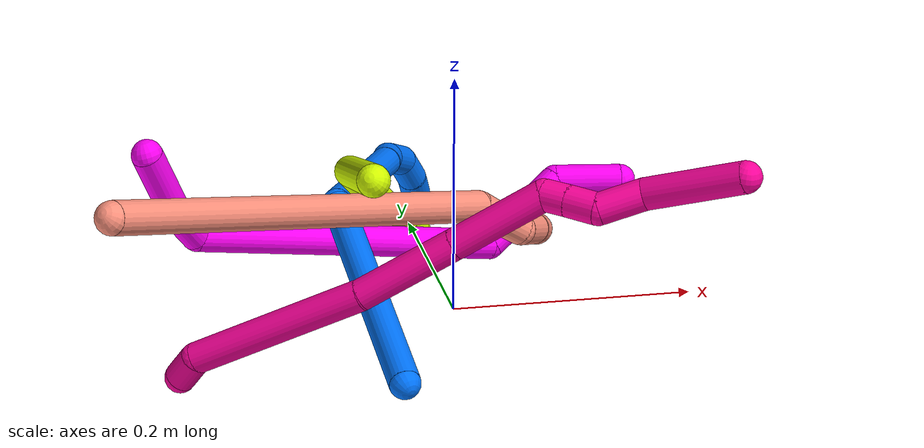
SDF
<sdf version="1.7">
 <world name="default">
  <model name="10">
   <static>0</static>
   <link name="10">
    <collision name="collision-cylinder-e_1_1_4">
     <pose>0.003329 0.014089 -0.028062 -2.6763 0.105633 -0.439052</pose>
     <geometry><cylinder><radius>0.0125</radius><length>0.063152</length></cylinder></geometry>
     <surface>
      <friction><ode><mu>1.16</mu><mu2>1.16</mu2><slip1>0</slip1><slip2>0</slip2></ode></friction>
      <contact><ode><kp>1e+06</kp><kd>1</kd><max_vel>0</max_vel><min_depth>0.001</min_depth></ode></contact>
     </surface>
    </collision>
    <visual name="visual-cylinder-e_1_1_4">
     <pose>0.003329 0.014089 -0.028062 -2.6763 0.105633 -0.439052</pose>
     <geometry><cylinder><radius>0.0125</radius><length>0.063152</length></cylinder></geometry>
     <material><ambient>1 0 0.964706 1</ambient></material>
    </visual>
    <collision name="collision-cylinder-e_2_4_5">
     <pose>0.011706 0.037508 -0.069804 -2.54304 0.295856 -0.899864</pose>
     <geometry><cylinder><radius>0.0125</radius><length>0.034623</length></cylinder></geometry>
     <surface>
      <friction><ode><mu>1.16</mu><mu2>1.16</mu2><slip1>0</slip1><slip2>0</slip2></ode></friction>
      <contact><ode><kp>1e+06</kp><kd>1</kd><max_vel>0</max_vel><min_depth>0.001</min_depth></ode></contact>
     </surface>
    </collision>
    <visual name="visual-cylinder-e_2_4_5">
     <pose>0.011706 0.037508 -0.069804 -2.54304 0.295856 -0.899864</pose>
     <geometry><cylinder><radius>0.0125</radius><length>0.034623</length></cylinder></geometry>
     <material><ambient>1 0 0.964706 1</ambient></material>
    </visual>
    <collision name="collision-cylinder-e_3_5_6">
     <pose>0.128118 0.101478 -0.133516 -2.31219 0.98378 -1.76604</pose>
     <geometry><cylinder><radius>0.0125</radius><length>0.267513</length></cylinder></geometry>
     <surface>
      <friction><ode><mu>1.16</mu><mu2>1.16</mu2><slip1>0</slip1><slip2>0</slip2></ode></friction>
      <contact><ode><kp>1e+06</kp><kd>1</kd><max_vel>0</max_vel><min_depth>0.001</min_depth></ode></contact>
     </surface>
    </collision>
    <visual name="visual-cylinder-e_3_5_6">
     <pose>0.128118 0.101478 -0.133516 -2.31219 0.98378 -1.76604</pose>
     <geometry><cylinder><radius>0.0125</radius><length>0.267513</length></cylinder></geometry>
     <material><ambient>1 0 0.964706 1</ambient></material>
    </visual>
    <collision name="collision-cylinder-e_4_6_7">
     <pose>0.273289 0.172734 -0.169165 -0.85737 0.994377 -0.486211</pose>
     <geometry><cylinder><radius>0.0125</radius><length>0.080641</length></cylinder></geometry>
     <surface>
      <friction><ode><mu>1.16</mu><mu2>1.16</mu2><slip1>0</slip1><slip2>0</slip2></ode></friction>
      <contact><ode><kp>1e+06</kp><kd>1</kd><max_vel>0</max_vel><min_depth>0.001</min_depth></ode></contact>
     </surface>
    </collision>
    <visual name="visual-cylinder-e_4_6_7">
     <pose>0.273289 0.172734 -0.169165 -0.85737 0.994377 -0.486211</pose>
     <geometry><cylinder><radius>0.0125</radius><length>0.080641</length></cylinder></geometry>
     <material><ambient>1 0 0.964706 1</ambient></material>
    </visual>
    <collision name="collision-cylinder-e_5_7_2">
     <pose>0.33318 0.189221 -0.161888 3.12342 1.30486 3.1178</pose>
     <geometry><cylinder><radius>0.0125</radius><length>0.054071</length></cylinder></geometry>
     <surface>
      <friction><ode><mu>1.16</mu><mu2>1.16</mu2><slip1>0</slip1><slip2>0</slip2></ode></friction>
      <contact><ode><kp>1e+06</kp><kd>1</kd><max_vel>0</max_vel><min_depth>0.001</min_depth></ode></contact>
     </surface>
    </collision>
    <visual name="visual-cylinder-e_5_7_2">
     <pose>0.33318 0.189221 -0.161888 3.12342 1.30486 3.1178</pose>
     <geometry><cylinder><radius>0.0125</radius><length>0.054071</length></cylinder></geometry>
     <material><ambient>1 0 0.964706 1</ambient></material>
    </visual>
    <collision name="collision-sphere-2">
     <pose>0.359265 0.189092 -0.168992 0 -0 0</pose>
     <geometry><sphere><radius>0.0125</radius></sphere></geometry>
     <surface>
      <friction><ode><mu>1.16</mu><mu2>1.16</mu2><slip1>0</slip1><slip2>0</slip2></ode></friction>
      <contact><ode><kp>1e+06</kp><kd>1</kd><max_vel>0</max_vel><min_depth>0.001</min_depth></ode></contact>
     </surface>
    </collision>
    <visual name="visual-sphere-2">
     <pose>0.359265 0.189092 -0.168992 0 -0 0</pose>
     <geometry><sphere><radius>0.0125</radius></sphere></geometry>
     <material><ambient>1 0 0.964706 1</ambient></material>
    </visual>
    <collision name="collision-sphere-7">
     <pose>0.307094 0.18935 -0.154783 0 -0 0</pose>
     <geometry><sphere><radius>0.0125</radius></sphere></geometry>
     <surface>
      <friction><ode><mu>1.16</mu><mu2>1.16</mu2><slip1>0</slip1><slip2>0</slip2></ode></friction>
      <contact><ode><kp>1e+06</kp><kd>1</kd><max_vel>0</max_vel><min_depth>0.001</min_depth></ode></contact>
     </surface>
    </collision>
    <visual name="visual-sphere-7">
     <pose>0.307094 0.18935 -0.154783 0 -0 0</pose>
     <geometry><sphere><radius>0.0125</radius></sphere></geometry>
     <material><ambient>1 0 0.964706 1</ambient></material>
    </visual>
    <collision name="collision-sphere-6">
     <pose>0.239483 0.156117 -0.183546 0 -0 0</pose>
     <geometry><sphere><radius>0.0125</radius></sphere></geometry>
     <surface>
      <friction><ode><mu>1.16</mu><mu2>1.16</mu2><slip1>0</slip1><slip2>0</slip2></ode></friction>
      <contact><ode><kp>1e+06</kp><kd>1</kd><max_vel>0</max_vel><min_depth>0.001</min_depth></ode></contact>
     </surface>
    </collision>
    <visual name="visual-sphere-6">
     <pose>0.239483 0.156117 -0.183546 0 -0 0</pose>
     <geometry><sphere><radius>0.0125</radius></sphere></geometry>
     <material><ambient>1 0 0.964706 1</ambient></material>
    </visual>
    <collision name="collision-sphere-5">
     <pose>0.016753 0.046838 -0.083485 0 -0 0</pose>
     <geometry><sphere><radius>0.0125</radius></sphere></geometry>
     <surface>
      <friction><ode><mu>1.16</mu><mu2>1.16</mu2><slip1>0</slip1><slip2>0</slip2></ode></friction>
      <contact><ode><kp>1e+06</kp><kd>1</kd><max_vel>0</max_vel><min_depth>0.001</min_depth></ode></contact>
     </surface>
    </collision>
    <visual name="visual-sphere-5">
     <pose>0.016753 0.046838 -0.083485 0 -0 0</pose>
     <geometry><sphere><radius>0.0125</radius></sphere></geometry>
     <material><ambient>1 0 0.964706 1</ambient></material>
    </visual>
    <collision name="collision-sphere-1">
     <geometry><sphere><radius>0.0125</radius></sphere></geometry>
     <surface>
      <friction><ode><mu>1.16</mu><mu2>1.16</mu2><slip1>0</slip1><slip2>0</slip2></ode></friction>
      <contact><ode><kp>1e+06</kp><kd>1</kd><max_vel>0</max_vel><min_depth>0.001</min_depth></ode></contact>
     </surface>
    </collision>
    <visual name="visual-sphere-1">
     <geometry><sphere><radius>0.0125</radius></sphere></geometry>
     <material><ambient>1 0 0.964706 1</ambient></material>
    </visual>
    <collision name="collision-sphere-4">
     <pose>0.006659 0.028177 -0.056124 0 -0 0</pose>
     <geometry><sphere><radius>0.0125</radius></sphere></geometry>
     <surface>
      <friction><ode><mu>1.16</mu><mu2>1.16</mu2><slip1>0</slip1><slip2>0</slip2></ode></friction>
      <contact><ode><kp>1e+06</kp><kd>1</kd><max_vel>0</max_vel><min_depth>0.001</min_depth></ode></contact>
     </surface>
    </collision>
    <visual name="visual-sphere-4">
     <pose>0.006659 0.028177 -0.056124 0 -0 0</pose>
     <geometry><sphere><radius>0.0125</radius></sphere></geometry>
     <material><ambient>1 0 0.964706 1</ambient></material>
    </visual>
    <inertial>
     <pose>0.149885 0.106991 -0.124602 0 -0 0</pose>
     <mass>0.5</mass>
     <inertia>
      <ixx>-0.001</ixx>
      <ixy>0</ixy>
      <ixz>0</ixz>
      <iyy>0.000331</iyy>
      <iyz>0</iyz>
      <izz>-0.002096</izz>
     </inertia>
    </inertial>
   </link>
   <pose>-0.260705 -0.101735 0.189129 -0.127721 -0.250648 -0.080483</pose>
  </model>
  <model name="14">
   <static>0</static>
   <link name="14">
    <collision name="collision-cylinder-e_1_1_4">
     <pose>-0.008908 0.026792 0.108376 -0.242355 -0.079626 0.009701</pose>
     <geometry><cylinder><radius>0.0125</radius><length>0.223987</length></cylinder></geometry>
     <surface>
      <friction><ode><mu>1.16</mu><mu2>1.16</mu2><slip1>0</slip1><slip2>0</slip2></ode></friction>
      <contact><ode><kp>1e+06</kp><kd>1</kd><max_vel>0</max_vel><min_depth>0.001</min_depth></ode></contact>
     </surface>
    </collision>
    <visual name="visual-cylinder-e_1_1_4">
     <pose>-0.008908 0.026792 0.108376 -0.242355 -0.079626 0.009701</pose>
     <geometry><cylinder><radius>0.0125</radius><length>0.223987</length></cylinder></geometry>
     <material><ambient>0 0.462745 1 1</ambient></material>
    </visual>
    <collision name="collision-cylinder-e_2_4_5">
     <pose>-0.047791 0.108464 0.266124 -0.838176 -0.385708 0.17355</pose>
     <geometry><cylinder><radius>0.0125</radius><length>0.159347</length></cylinder></geometry>
     <surface>
      <friction><ode><mu>1.16</mu><mu2>1.16</mu2><slip1>0</slip1><slip2>0</slip2></ode></friction>
      <contact><ode><kp>1e+06</kp><kd>1</kd><max_vel>0</max_vel><min_depth>0.001</min_depth></ode></contact>
     </surface>
    </collision>
    <visual name="visual-cylinder-e_2_4_5">
     <pose>-0.047791 0.108464 0.266124 -0.838176 -0.385708 0.17355</pose>
     <geometry><cylinder><radius>0.0125</radius><length>0.159347</length></cylinder></geometry>
     <material><ambient>0 0.462745 1 1</ambient></material>
    </visual>
    <collision name="collision-cylinder-e_3_5_6">
     <pose>-0.082998 0.169668 0.32321 -0.686795 -0.483139 0.17574</pose>
     <geometry><cylinder><radius>0.0125</radius><length>0.02253</length></cylinder></geometry>
     <surface>
      <friction><ode><mu>1.16</mu><mu2>1.16</mu2><slip1>0</slip1><slip2>0</slip2></ode></friction>
      <contact><ode><kp>1e+06</kp><kd>1</kd><max_vel>0</max_vel><min_depth>0.001</min_depth></ode></contact>
     </surface>
    </collision>
    <visual name="visual-cylinder-e_3_5_6">
     <pose>-0.082998 0.169668 0.32321 -0.686795 -0.483139 0.17574</pose>
     <geometry><cylinder><radius>0.0125</radius><length>0.02253</length></cylinder></geometry>
     <material><ambient>0 0.462745 1 1</ambient></material>
    </visual>
    <collision name="collision-cylinder-e_4_6_7">
     <pose>-0.098235 0.188904 0.337882 -1.07648 -0.598585 0.364362</pose>
     <geometry><cylinder><radius>0.0125</radius><length>0.035507</length></cylinder></geometry>
     <surface>
      <friction><ode><mu>1.16</mu><mu2>1.16</mu2><slip1>0</slip1><slip2>0</slip2></ode></friction>
      <contact><ode><kp>1e+06</kp><kd>1</kd><max_vel>0</max_vel><min_depth>0.001</min_depth></ode></contact>
     </surface>
    </collision>
    <visual name="visual-cylinder-e_4_6_7">
     <pose>-0.098235 0.188904 0.337882 -1.07648 -0.598585 0.364362</pose>
     <geometry><cylinder><radius>0.0125</radius><length>0.035507</length></cylinder></geometry>
     <material><ambient>0 0.462745 1 1</ambient></material>
    </visual>
    <collision name="collision-cylinder-e_5_7_8">
     <pose>-0.120351 0.210441 0.345682 -1.4736 -0.94975 0.872853</pose>
     <geometry><cylinder><radius>0.0125</radius><length>0.029789</length></cylinder></geometry>
     <surface>
      <friction><ode><mu>1.16</mu><mu2>1.16</mu2><slip1>0</slip1><slip2>0</slip2></ode></friction>
      <contact><ode><kp>1e+06</kp><kd>1</kd><max_vel>0</max_vel><min_depth>0.001</min_depth></ode></contact>
     </surface>
    </collision>
    <visual name="visual-cylinder-e_5_7_8">
     <pose>-0.120351 0.210441 0.345682 -1.4736 -0.94975 0.872853</pose>
     <geometry><cylinder><radius>0.0125</radius><length>0.029789</length></cylinder></geometry>
     <material><ambient>0 0.462745 1 1</ambient></material>
    </visual>
    <collision name="collision-cylinder-e_6_8_2">
     <pose>-0.145171 0.225585 0.348531 -1.27183 -1.07817 0.831681</pose>
     <geometry><cylinder><radius>0.0125</radius><length>0.028842</length></cylinder></geometry>
     <surface>
      <friction><ode><mu>1.16</mu><mu2>1.16</mu2><slip1>0</slip1><slip2>0</slip2></ode></friction>
      <contact><ode><kp>1e+06</kp><kd>1</kd><max_vel>0</max_vel><min_depth>0.001</min_depth></ode></contact>
     </surface>
    </collision>
    <visual name="visual-cylinder-e_6_8_2">
     <pose>-0.145171 0.225585 0.348531 -1.27183 -1.07817 0.831681</pose>
     <geometry><cylinder><radius>0.0125</radius><length>0.028842</length></cylinder></geometry>
     <material><ambient>0 0.462745 1 1</ambient></material>
    </visual>
    <collision name="collision-sphere-2">
     <pose>-0.157877 0.232102 0.35054 0 -0 0</pose>
     <geometry><sphere><radius>0.0125</radius></sphere></geometry>
     <surface>
      <friction><ode><mu>1.16</mu><mu2>1.16</mu2><slip1>0</slip1><slip2>0</slip2></ode></friction>
      <contact><ode><kp>1e+06</kp><kd>1</kd><max_vel>0</max_vel><min_depth>0.001</min_depth></ode></contact>
     </surface>
    </collision>
    <visual name="visual-sphere-2">
     <pose>-0.157877 0.232102 0.35054 0 -0 0</pose>
     <geometry><sphere><radius>0.0125</radius></sphere></geometry>
     <material><ambient>0 0.462745 1 1</ambient></material>
    </visual>
    <collision name="collision-sphere-4">
     <pose>-0.017816 0.053584 0.216752 0 -0 0</pose>
     <geometry><sphere><radius>0.0125</radius></sphere></geometry>
     <surface>
      <friction><ode><mu>1.16</mu><mu2>1.16</mu2><slip1>0</slip1><slip2>0</slip2></ode></friction>
      <contact><ode><kp>1e+06</kp><kd>1</kd><max_vel>0</max_vel><min_depth>0.001</min_depth></ode></contact>
     </surface>
    </collision>
    <visual name="visual-sphere-4">
     <pose>-0.017816 0.053584 0.216752 0 -0 0</pose>
     <geometry><sphere><radius>0.0125</radius></sphere></geometry>
     <material><ambient>0 0.462745 1 1</ambient></material>
    </visual>
    <collision name="collision-sphere-1">
     <geometry><sphere><radius>0.0125</radius></sphere></geometry>
     <surface>
      <friction><ode><mu>1.16</mu><mu2>1.16</mu2><slip1>0</slip1><slip2>0</slip2></ode></friction>
      <contact><ode><kp>1e+06</kp><kd>1</kd><max_vel>0</max_vel><min_depth>0.001</min_depth></ode></contact>
     </surface>
    </collision>
    <visual name="visual-sphere-1">
     <geometry><sphere><radius>0.0125</radius></sphere></geometry>
     <material><ambient>0 0.462745 1 1</ambient></material>
    </visual>
    <collision name="collision-sphere-8">
     <pose>-0.132464 0.219067 0.346523 0 -0 0</pose>
     <geometry><sphere><radius>0.0125</radius></sphere></geometry>
     <surface>
      <friction><ode><mu>1.16</mu><mu2>1.16</mu2><slip1>0</slip1><slip2>0</slip2></ode></friction>
      <contact><ode><kp>1e+06</kp><kd>1</kd><max_vel>0</max_vel><min_depth>0.001</min_depth></ode></contact>
     </surface>
    </collision>
    <visual name="visual-sphere-8">
     <pose>-0.132464 0.219067 0.346523 0 -0 0</pose>
     <geometry><sphere><radius>0.0125</radius></sphere></geometry>
     <material><ambient>0 0.462745 1 1</ambient></material>
    </visual>
    <collision name="collision-sphere-5">
     <pose>-0.077765 0.163343 0.315496 0 -0 0</pose>
     <geometry><sphere><radius>0.0125</radius></sphere></geometry>
     <surface>
      <friction><ode><mu>1.16</mu><mu2>1.16</mu2><slip1>0</slip1><slip2>0</slip2></ode></friction>
      <contact><ode><kp>1e+06</kp><kd>1</kd><max_vel>0</max_vel><min_depth>0.001</min_depth></ode></contact>
     </surface>
    </collision>
    <visual name="visual-sphere-5">
     <pose>-0.077765 0.163343 0.315496 0 -0 0</pose>
     <geometry><sphere><radius>0.0125</radius></sphere></geometry>
     <material><ambient>0 0.462745 1 1</ambient></material>
    </visual>
    <collision name="collision-sphere-6">
     <pose>-0.088231 0.175993 0.330924 0 -0 0</pose>
     <geometry><sphere><radius>0.0125</radius></sphere></geometry>
     <surface>
      <friction><ode><mu>1.16</mu><mu2>1.16</mu2><slip1>0</slip1><slip2>0</slip2></ode></friction>
      <contact><ode><kp>1e+06</kp><kd>1</kd><max_vel>0</max_vel><min_depth>0.001</min_depth></ode></contact>
     </surface>
    </collision>
    <visual name="visual-sphere-6">
     <pose>-0.088231 0.175993 0.330924 0 -0 0</pose>
     <geometry><sphere><radius>0.0125</radius></sphere></geometry>
     <material><ambient>0 0.462745 1 1</ambient></material>
    </visual>
    <collision name="collision-sphere-7">
     <pose>-0.108238 0.201815 0.34484 0 -0 0</pose>
     <geometry><sphere><radius>0.0125</radius></sphere></geometry>
     <surface>
      <friction><ode><mu>1.16</mu><mu2>1.16</mu2><slip1>0</slip1><slip2>0</slip2></ode></friction>
      <contact><ode><kp>1e+06</kp><kd>1</kd><max_vel>0</max_vel><min_depth>0.001</min_depth></ode></contact>
     </surface>
    </collision>
    <visual name="visual-sphere-7">
     <pose>-0.108238 0.201815 0.34484 0 -0 0</pose>
     <geometry><sphere><radius>0.0125</radius></sphere></geometry>
     <material><ambient>0 0.462745 1 1</ambient></material>
    </visual>
    <inertial>
     <pose>-0.045481 0.093179 0.212618 0 -0 0</pose>
     <mass>0.5</mass>
     <inertia>
      <ixx>0.001319</ixx>
      <ixy>0</ixy>
      <ixz>0</ixz>
      <iyy>0.001257</iyy>
      <iyz>0</iyz>
      <izz>-0.00023</izz>
     </inertia>
    </inertial>
   </link>
   <pose>-0.085631 -0.238742 0.043251 -0.092254 -1.16702 -1.15063</pose>
  </model>
  <model name="15">
   <static>0</static>
   <link name="15">
    <collision name="collision-cylinder-e_1_1_4">
     <pose>-0.046685 -0.015273 -0.124499 3.01952 -0.356308 -2.48723</pose>
     <geometry><cylinder><radius>0.0125</radius><length>0.267676</length></cylinder></geometry>
     <surface>
      <friction><ode><mu>1.16</mu><mu2>1.16</mu2><slip1>0</slip1><slip2>0</slip2></ode></friction>
      <contact><ode><kp>1e+06</kp><kd>1</kd><max_vel>0</max_vel><min_depth>0.001</min_depth></ode></contact>
     </surface>
    </collision>
    <visual name="visual-cylinder-e_1_1_4">
     <pose>-0.046685 -0.015273 -0.124499 3.01952 -0.356308 -2.48723</pose>
     <geometry><cylinder><radius>0.0125</radius><length>0.267676</length></cylinder></geometry>
     <material><ambient>0.835294 1 0 1</ambient></material>
    </visual>
    <collision name="collision-cylinder-e_2_4_5">
     <pose>-0.07755 -0.031106 -0.301044 3.13084 0.295067 3.06925</pose>
     <geometry><cylinder><radius>0.0125</radius><length>0.108801</length></cylinder></geometry>
     <surface>
      <friction><ode><mu>1.16</mu><mu2>1.16</mu2><slip1>0</slip1><slip2>0</slip2></ode></friction>
      <contact><ode><kp>1e+06</kp><kd>1</kd><max_vel>0</max_vel><min_depth>0.001</min_depth></ode></contact>
     </surface>
    </collision>
    <visual name="visual-cylinder-e_2_4_5">
     <pose>-0.07755 -0.031106 -0.301044 3.13084 0.295067 3.06925</pose>
     <geometry><cylinder><radius>0.0125</radius><length>0.108801</length></cylinder></geometry>
     <material><ambient>0.835294 1 0 1</ambient></material>
    </visual>
    <collision name="collision-cylinder-e_3_5_6">
     <pose>-0.06064 -0.029636 -0.364534 -2.96601 0.093526 -0.977318</pose>
     <geometry><cylinder><radius>0.0125</radius><length>0.023347</length></cylinder></geometry>
     <surface>
      <friction><ode><mu>1.16</mu><mu2>1.16</mu2><slip1>0</slip1><slip2>0</slip2></ode></friction>
      <contact><ode><kp>1e+06</kp><kd>1</kd><max_vel>0</max_vel><min_depth>0.001</min_depth></ode></contact>
     </surface>
    </collision>
    <visual name="visual-cylinder-e_3_5_6">
     <pose>-0.06064 -0.029636 -0.364534 -2.96601 0.093526 -0.977318</pose>
     <geometry><cylinder><radius>0.0125</radius><length>0.023347</length></cylinder></geometry>
     <material><ambient>0.835294 1 0 1</ambient></material>
    </visual>
    <collision name="collision-cylinder-e_4_6_7">
     <pose>-0.065681 -0.028016 -0.383874 3.08958 -0.659615 -2.98991</pose>
     <geometry><cylinder><radius>0.0125</radius><length>0.020011</length></cylinder></geometry>
     <surface>
      <friction><ode><mu>1.16</mu><mu2>1.16</mu2><slip1>0</slip1><slip2>0</slip2></ode></friction>
      <contact><ode><kp>1e+06</kp><kd>1</kd><max_vel>0</max_vel><min_depth>0.001</min_depth></ode></contact>
     </surface>
    </collision>
    <visual name="visual-cylinder-e_4_6_7">
     <pose>-0.065681 -0.028016 -0.383874 3.08958 -0.659615 -2.98991</pose>
     <geometry><cylinder><radius>0.0125</radius><length>0.020011</length></cylinder></geometry>
     <material><ambient>0.835294 1 0 1</ambient></material>
    </visual>
    <collision name="collision-cylinder-e_5_7_8">
     <pose>-0.076315 -0.030506 -0.400494 2.90766 -0.465258 -2.22076</pose>
     <geometry><cylinder><radius>0.0125</radius><length>0.02007</length></cylinder></geometry>
     <surface>
      <friction><ode><mu>1.16</mu><mu2>1.16</mu2><slip1>0</slip1><slip2>0</slip2></ode></friction>
      <contact><ode><kp>1e+06</kp><kd>1</kd><max_vel>0</max_vel><min_depth>0.001</min_depth></ode></contact>
     </surface>
    </collision>
    <visual name="visual-cylinder-e_5_7_8">
     <pose>-0.076315 -0.030506 -0.400494 2.90766 -0.465258 -2.22076</pose>
     <geometry><cylinder><radius>0.0125</radius><length>0.02007</length></cylinder></geometry>
     <material><ambient>0.835294 1 0 1</ambient></material>
    </visual>
    <collision name="collision-cylinder-e_6_8_9">
     <pose>-0.084299 -0.034666 -0.418372 2.91811 -0.355145 -2.02404</pose>
     <geometry><cylinder><radius>0.0125</radius><length>0.020026</length></cylinder></geometry>
     <surface>
      <friction><ode><mu>1.16</mu><mu2>1.16</mu2><slip1>0</slip1><slip2>0</slip2></ode></friction>
      <contact><ode><kp>1e+06</kp><kd>1</kd><max_vel>0</max_vel><min_depth>0.001</min_depth></ode></contact>
     </surface>
    </collision>
    <visual name="visual-cylinder-e_6_8_9">
     <pose>-0.084299 -0.034666 -0.418372 2.91811 -0.355145 -2.02404</pose>
     <geometry><cylinder><radius>0.0125</radius><length>0.020026</length></cylinder></geometry>
     <material><ambient>0.835294 1 0 1</ambient></material>
    </visual>
    <collision name="collision-cylinder-e_7_9_10">
     <pose>-0.089964 -0.037934 -0.437214 3.01965 -0.22006 -2.13197</pose>
     <geometry><cylinder><radius>0.0125</radius><length>0.020001</length></cylinder></geometry>
     <surface>
      <friction><ode><mu>1.16</mu><mu2>1.16</mu2><slip1>0</slip1><slip2>0</slip2></ode></friction>
      <contact><ode><kp>1e+06</kp><kd>1</kd><max_vel>0</max_vel><min_depth>0.001</min_depth></ode></contact>
     </surface>
    </collision>
    <visual name="visual-cylinder-e_7_9_10">
     <pose>-0.089964 -0.037934 -0.437214 3.01965 -0.22006 -2.13197</pose>
     <geometry><cylinder><radius>0.0125</radius><length>0.020001</length></cylinder></geometry>
     <material><ambient>0.835294 1 0 1</ambient></material>
    </visual>
    <collision name="collision-cylinder-e_8_10_2">
     <pose>-0.094852 -0.035538 -0.455874 -2.76176 -0.273021 1.24088</pose>
     <geometry><cylinder><radius>0.0125</radius><length>0.020068</length></cylinder></geometry>
     <surface>
      <friction><ode><mu>1.16</mu><mu2>1.16</mu2><slip1>0</slip1><slip2>0</slip2></ode></friction>
      <contact><ode><kp>1e+06</kp><kd>1</kd><max_vel>0</max_vel><min_depth>0.001</min_depth></ode></contact>
     </surface>
    </collision>
    <visual name="visual-cylinder-e_8_10_2">
     <pose>-0.094852 -0.035538 -0.455874 -2.76176 -0.273021 1.24088</pose>
     <geometry><cylinder><radius>0.0125</radius><length>0.020068</length></cylinder></geometry>
     <material><ambient>0.835294 1 0 1</ambient></material>
    </visual>
    <collision name="collision-sphere-2">
     <pose>-0.097558 -0.031956 -0.464848 0 -0 0</pose>
     <geometry><sphere><radius>0.0125</radius></sphere></geometry>
     <surface>
      <friction><ode><mu>1.16</mu><mu2>1.16</mu2><slip1>0</slip1><slip2>0</slip2></ode></friction>
      <contact><ode><kp>1e+06</kp><kd>1</kd><max_vel>0</max_vel><min_depth>0.001</min_depth></ode></contact>
     </surface>
    </collision>
    <visual name="visual-sphere-2">
     <pose>-0.097558 -0.031956 -0.464848 0 -0 0</pose>
     <geometry><sphere><radius>0.0125</radius></sphere></geometry>
     <material><ambient>0.835294 1 0 1</ambient></material>
    </visual>
    <collision name="collision-sphere-10">
     <pose>-0.092146 -0.039121 -0.446901 0 -0 0</pose>
     <geometry><sphere><radius>0.0125</radius></sphere></geometry>
     <surface>
      <friction><ode><mu>1.16</mu><mu2>1.16</mu2><slip1>0</slip1><slip2>0</slip2></ode></friction>
      <contact><ode><kp>1e+06</kp><kd>1</kd><max_vel>0</max_vel><min_depth>0.001</min_depth></ode></contact>
     </surface>
    </collision>
    <visual name="visual-sphere-10">
     <pose>-0.092146 -0.039121 -0.446901 0 -0 0</pose>
     <geometry><sphere><radius>0.0125</radius></sphere></geometry>
     <material><ambient>0.835294 1 0 1</ambient></material>
    </visual>
    <collision name="collision-sphere-9">
     <pose>-0.087781 -0.036747 -0.427527 0 -0 0</pose>
     <geometry><sphere><radius>0.0125</radius></sphere></geometry>
     <surface>
      <friction><ode><mu>1.16</mu><mu2>1.16</mu2><slip1>0</slip1><slip2>0</slip2></ode></friction>
      <contact><ode><kp>1e+06</kp><kd>1</kd><max_vel>0</max_vel><min_depth>0.001</min_depth></ode></contact>
     </surface>
    </collision>
    <visual name="visual-sphere-9">
     <pose>-0.087781 -0.036747 -0.427527 0 -0 0</pose>
     <geometry><sphere><radius>0.0125</radius></sphere></geometry>
     <material><ambient>0.835294 1 0 1</ambient></material>
    </visual>
    <collision name="collision-sphere-4">
     <pose>-0.09337 -0.030546 -0.248997 0 -0 0</pose>
     <geometry><sphere><radius>0.0125</radius></sphere></geometry>
     <surface>
      <friction><ode><mu>1.16</mu><mu2>1.16</mu2><slip1>0</slip1><slip2>0</slip2></ode></friction>
      <contact><ode><kp>1e+06</kp><kd>1</kd><max_vel>0</max_vel><min_depth>0.001</min_depth></ode></contact>
     </surface>
    </collision>
    <visual name="visual-sphere-4">
     <pose>-0.09337 -0.030546 -0.248997 0 -0 0</pose>
     <geometry><sphere><radius>0.0125</radius></sphere></geometry>
     <material><ambient>0.835294 1 0 1</ambient></material>
    </visual>
    <collision name="collision-sphere-1">
     <geometry><sphere><radius>0.0125</radius></sphere></geometry>
     <surface>
      <friction><ode><mu>1.16</mu><mu2>1.16</mu2><slip1>0</slip1><slip2>0</slip2></ode></friction>
      <contact><ode><kp>1e+06</kp><kd>1</kd><max_vel>0</max_vel><min_depth>0.001</min_depth></ode></contact>
     </surface>
    </collision>
    <visual name="visual-sphere-1">
     <geometry><sphere><radius>0.0125</radius></sphere></geometry>
     <material><ambient>0.835294 1 0 1</ambient></material>
    </visual>
    <collision name="collision-sphere-8">
     <pose>-0.080817 -0.032585 -0.409218 0 -0 0</pose>
     <geometry><sphere><radius>0.0125</radius></sphere></geometry>
     <surface>
      <friction><ode><mu>1.16</mu><mu2>1.16</mu2><slip1>0</slip1><slip2>0</slip2></ode></friction>
      <contact><ode><kp>1e+06</kp><kd>1</kd><max_vel>0</max_vel><min_depth>0.001</min_depth></ode></contact>
     </surface>
    </collision>
    <visual name="visual-sphere-8">
     <pose>-0.080817 -0.032585 -0.409218 0 -0 0</pose>
     <geometry><sphere><radius>0.0125</radius></sphere></geometry>
     <material><ambient>0.835294 1 0 1</ambient></material>
    </visual>
    <collision name="collision-sphere-5">
     <pose>-0.06173 -0.031666 -0.35309 0 -0 0</pose>
     <geometry><sphere><radius>0.0125</radius></sphere></geometry>
     <surface>
      <friction><ode><mu>1.16</mu><mu2>1.16</mu2><slip1>0</slip1><slip2>0</slip2></ode></friction>
      <contact><ode><kp>1e+06</kp><kd>1</kd><max_vel>0</max_vel><min_depth>0.001</min_depth></ode></contact>
     </surface>
    </collision>
    <visual name="visual-sphere-5">
     <pose>-0.06173 -0.031666 -0.35309 0 -0 0</pose>
     <geometry><sphere><radius>0.0125</radius></sphere></geometry>
     <material><ambient>0.835294 1 0 1</ambient></material>
    </visual>
    <collision name="collision-sphere-6">
     <pose>-0.05955 -0.027605 -0.375978 0 -0 0</pose>
     <geometry><sphere><radius>0.0125</radius></sphere></geometry>
     <surface>
      <friction><ode><mu>1.16</mu><mu2>1.16</mu2><slip1>0</slip1><slip2>0</slip2></ode></friction>
      <contact><ode><kp>1e+06</kp><kd>1</kd><max_vel>0</max_vel><min_depth>0.001</min_depth></ode></contact>
     </surface>
    </collision>
    <visual name="visual-sphere-6">
     <pose>-0.05955 -0.027605 -0.375978 0 -0 0</pose>
     <geometry><sphere><radius>0.0125</radius></sphere></geometry>
     <material><ambient>0.835294 1 0 1</ambient></material>
    </visual>
    <collision name="collision-sphere-7">
     <pose>-0.071813 -0.028427 -0.39177 0 -0 0</pose>
     <geometry><sphere><radius>0.0125</radius></sphere></geometry>
     <surface>
      <friction><ode><mu>1.16</mu><mu2>1.16</mu2><slip1>0</slip1><slip2>0</slip2></ode></friction>
      <contact><ode><kp>1e+06</kp><kd>1</kd><max_vel>0</max_vel><min_depth>0.001</min_depth></ode></contact>
     </surface>
    </collision>
    <visual name="visual-sphere-7">
     <pose>-0.071813 -0.028427 -0.39177 0 -0 0</pose>
     <geometry><sphere><radius>0.0125</radius></sphere></geometry>
     <material><ambient>0.835294 1 0 1</ambient></material>
    </visual>
    <inertial>
     <pose>-0.061173 -0.023007 -0.233162 0 -0 0</pose>
     <mass>0.5</mass>
     <inertia>
      <ixx>-0.002226</ixx>
      <ixy>0</ixy>
      <ixz>0</ixz>
      <iyy>0.000506</iyy>
      <iyz>0</iyz>
      <izz>0.00068</izz>
     </inertia>
    </inertial>
   </link>
   <pose>-0.11854 -0.292936 0.228188 0.896814 0.651968 -0.908065</pose>
  </model>
  <model name="16">
   <static>0</static>
   <link name="16">
    <collision name="collision-cylinder-e_1_1_4">
     <pose>0.016708 -0.063492 -0.188108 2.81607 0.083961 0.500849</pose>
     <geometry><cylinder><radius>0.0125</radius><length>0.398471</length></cylinder></geometry>
     <surface>
      <friction><ode><mu>1.16</mu><mu2>1.16</mu2><slip1>0</slip1><slip2>0</slip2></ode></friction>
      <contact><ode><kp>1e+06</kp><kd>1</kd><max_vel>0</max_vel><min_depth>0.001</min_depth></ode></contact>
     </surface>
    </collision>
    <visual name="visual-cylinder-e_1_1_4">
     <pose>0.016708 -0.063492 -0.188108 2.81607 0.083961 0.500849</pose>
     <geometry><cylinder><radius>0.0125</radius><length>0.398471</length></cylinder></geometry>
     <material><ambient>1 0.576471 0.494118 1</ambient></material>
    </visual>
    <collision name="collision-cylinder-e_2_4_5">
     <pose>0.030083 -0.12798 -0.389962 3.06922 -0.237314 -2.55197</pose>
     <geometry><cylinder><radius>0.0125</radius><length>0.028361</length></cylinder></geometry>
     <surface>
      <friction><ode><mu>1.16</mu><mu2>1.16</mu2><slip1>0</slip1><slip2>0</slip2></ode></friction>
      <contact><ode><kp>1e+06</kp><kd>1</kd><max_vel>0</max_vel><min_depth>0.001</min_depth></ode></contact>
     </surface>
    </collision>
    <visual name="visual-cylinder-e_2_4_5">
     <pose>0.030083 -0.12798 -0.389962 3.06922 -0.237314 -2.55197</pose>
     <geometry><cylinder><radius>0.0125</radius><length>0.028361</length></cylinder></geometry>
     <material><ambient>1 0.576471 0.494118 1</ambient></material>
    </visual>
    <collision name="collision-cylinder-e_3_5_6">
     <pose>0.024024 -0.13041 -0.414219 3.00605 -0.251424 -2.15589</pose>
     <geometry><cylinder><radius>0.0125</radius><length>0.021903</length></cylinder></geometry>
     <surface>
      <friction><ode><mu>1.16</mu><mu2>1.16</mu2><slip1>0</slip1><slip2>0</slip2></ode></friction>
      <contact><ode><kp>1e+06</kp><kd>1</kd><max_vel>0</max_vel><min_depth>0.001</min_depth></ode></contact>
     </surface>
    </collision>
    <visual name="visual-cylinder-e_3_5_6">
     <pose>0.024024 -0.13041 -0.414219 3.00605 -0.251424 -2.15589</pose>
     <geometry><cylinder><radius>0.0125</radius><length>0.021903</length></cylinder></geometry>
     <material><ambient>1 0.576471 0.494118 1</ambient></material>
    </visual>
    <collision name="collision-cylinder-e_4_6_7">
     <pose>0.026269 -0.133059 -0.439286 3.0583 0.327902 2.64812</pose>
     <geometry><cylinder><radius>0.0125</radius><length>0.030861</length></cylinder></geometry>
     <surface>
      <friction><ode><mu>1.16</mu><mu2>1.16</mu2><slip1>0</slip1><slip2>0</slip2></ode></friction>
      <contact><ode><kp>1e+06</kp><kd>1</kd><max_vel>0</max_vel><min_depth>0.001</min_depth></ode></contact>
     </surface>
    </collision>
    <visual name="visual-cylinder-e_4_6_7">
     <pose>0.026269 -0.133059 -0.439286 3.0583 0.327902 2.64812</pose>
     <geometry><cylinder><radius>0.0125</radius><length>0.030861</length></cylinder></geometry>
     <material><ambient>1 0.576471 0.494118 1</ambient></material>
    </visual>
    <collision name="collision-cylinder-e_5_7_2">
     <pose>0.035502 -0.133386 -0.46307 -3.04557 0.431147 -2.70962</pose>
     <geometry><cylinder><radius>0.0125</radius><length>0.020404</length></cylinder></geometry>
     <surface>
      <friction><ode><mu>1.16</mu><mu2>1.16</mu2><slip1>0</slip1><slip2>0</slip2></ode></friction>
      <contact><ode><kp>1e+06</kp><kd>1</kd><max_vel>0</max_vel><min_depth>0.001</min_depth></ode></contact>
     </surface>
    </collision>
    <visual name="visual-cylinder-e_5_7_2">
     <pose>0.035502 -0.133386 -0.46307 -3.04557 0.431147 -2.70962</pose>
     <geometry><cylinder><radius>0.0125</radius><length>0.020404</length></cylinder></geometry>
     <material><ambient>1 0.576471 0.494118 1</ambient></material>
    </visual>
    <collision name="collision-sphere-2">
     <pose>0.039766 -0.132497 -0.472295 0 -0 0</pose>
     <geometry><sphere><radius>0.0125</radius></sphere></geometry>
     <surface>
      <friction><ode><mu>1.16</mu><mu2>1.16</mu2><slip1>0</slip1><slip2>0</slip2></ode></friction>
      <contact><ode><kp>1e+06</kp><kd>1</kd><max_vel>0</max_vel><min_depth>0.001</min_depth></ode></contact>
     </surface>
    </collision>
    <visual name="visual-sphere-2">
     <pose>0.039766 -0.132497 -0.472295 0 -0 0</pose>
     <geometry><sphere><radius>0.0125</radius></sphere></geometry>
     <material><ambient>1 0.576471 0.494118 1</ambient></material>
    </visual>
    <collision name="collision-sphere-7">
     <pose>0.031239 -0.134274 -0.453844 0 -0 0</pose>
     <geometry><sphere><radius>0.0125</radius></sphere></geometry>
     <surface>
      <friction><ode><mu>1.16</mu><mu2>1.16</mu2><slip1>0</slip1><slip2>0</slip2></ode></friction>
      <contact><ode><kp>1e+06</kp><kd>1</kd><max_vel>0</max_vel><min_depth>0.001</min_depth></ode></contact>
     </surface>
    </collision>
    <visual name="visual-sphere-7">
     <pose>0.031239 -0.134274 -0.453844 0 -0 0</pose>
     <geometry><sphere><radius>0.0125</radius></sphere></geometry>
     <material><ambient>1 0.576471 0.494118 1</ambient></material>
    </visual>
    <collision name="collision-sphere-6">
     <pose>0.0213 -0.131844 -0.424729 0 -0 0</pose>
     <geometry><sphere><radius>0.0125</radius></sphere></geometry>
     <surface>
      <friction><ode><mu>1.16</mu><mu2>1.16</mu2><slip1>0</slip1><slip2>0</slip2></ode></friction>
      <contact><ode><kp>1e+06</kp><kd>1</kd><max_vel>0</max_vel><min_depth>0.001</min_depth></ode></contact>
     </surface>
    </collision>
    <visual name="visual-sphere-6">
     <pose>0.0213 -0.131844 -0.424729 0 -0 0</pose>
     <geometry><sphere><radius>0.0125</radius></sphere></geometry>
     <material><ambient>1 0.576471 0.494118 1</ambient></material>
    </visual>
    <collision name="collision-sphere-5">
     <pose>0.026749 -0.128977 -0.403709 0 -0 0</pose>
     <geometry><sphere><radius>0.0125</radius></sphere></geometry>
     <surface>
      <friction><ode><mu>1.16</mu><mu2>1.16</mu2><slip1>0</slip1><slip2>0</slip2></ode></friction>
      <contact><ode><kp>1e+06</kp><kd>1</kd><max_vel>0</max_vel><min_depth>0.001</min_depth></ode></contact>
     </surface>
    </collision>
    <visual name="visual-sphere-5">
     <pose>0.026749 -0.128977 -0.403709 0 -0 0</pose>
     <geometry><sphere><radius>0.0125</radius></sphere></geometry>
     <material><ambient>1 0.576471 0.494118 1</ambient></material>
    </visual>
    <collision name="collision-sphere-1">
     <geometry><sphere><radius>0.0125</radius></sphere></geometry>
     <surface>
      <friction><ode><mu>1.16</mu><mu2>1.16</mu2><slip1>0</slip1><slip2>0</slip2></ode></friction>
      <contact><ode><kp>1e+06</kp><kd>1</kd><max_vel>0</max_vel><min_depth>0.001</min_depth></ode></contact>
     </surface>
    </collision>
    <visual name="visual-sphere-1">
     <geometry><sphere><radius>0.0125</radius></sphere></geometry>
     <material><ambient>1 0.576471 0.494118 1</ambient></material>
    </visual>
    <collision name="collision-sphere-4">
     <pose>0.033417 -0.126984 -0.376215 0 -0 0</pose>
     <geometry><sphere><radius>0.0125</radius></sphere></geometry>
     <surface>
      <friction><ode><mu>1.16</mu><mu2>1.16</mu2><slip1>0</slip1><slip2>0</slip2></ode></friction>
      <contact><ode><kp>1e+06</kp><kd>1</kd><max_vel>0</max_vel><min_depth>0.001</min_depth></ode></contact>
     </surface>
    </collision>
    <visual name="visual-sphere-4">
     <pose>0.033417 -0.126984 -0.376215 0 -0 0</pose>
     <geometry><sphere><radius>0.0125</radius></sphere></geometry>
     <material><ambient>1 0.576471 0.494118 1</ambient></material>
    </visual>
    <inertial>
     <pose>0.019144 -0.077227 -0.236186 0 -0 0</pose>
     <mass>0.5</mass>
     <inertia>
      <ixx>0.007146</ixx>
      <ixy>0</ixy>
      <ixz>0</ixz>
      <iyy>-0.001801</iyy>
      <iyz>0</iyz>
      <izz>0.001205</izz>
     </inertia>
    </inertial>
   </link>
   <pose>-0.315199 -0.372274 0.243593 -0.913406 -0.46572 1.99247</pose>
  </model>
  <model name="18">
   <static>0</static>
   <link name="18">
    <collision name="collision-cylinder-e_1_1_4">
     <pose>0.00413 -0.004939 0.012065 0.388525 0.306795 0.060819</pose>
     <geometry><cylinder><radius>0.0125</radius><length>0.02735</length></cylinder></geometry>
     <surface>
      <friction><ode><mu>1.16</mu><mu2>1.16</mu2><slip1>0</slip1><slip2>0</slip2></ode></friction>
      <contact><ode><kp>1e+06</kp><kd>1</kd><max_vel>0</max_vel><min_depth>0.001</min_depth></ode></contact>
     </surface>
    </collision>
    <visual name="visual-cylinder-e_1_1_4">
     <pose>0.00413 -0.004939 0.012065 0.388525 0.306795 0.060819</pose>
     <geometry><cylinder><radius>0.0125</radius><length>0.02735</length></cylinder></geometry>
     <material><ambient>1 0.007843 0.615686 1</ambient></material>
    </visual>
    <collision name="collision-cylinder-e_2_4_5">
     <pose>0.064571 -0.030087 0.066453 0.445499 0.876323 0.211463</pose>
     <geometry><cylinder><radius>0.0125</radius><length>0.146569</length></cylinder></geometry>
     <surface>
      <friction><ode><mu>1.16</mu><mu2>1.16</mu2><slip1>0</slip1><slip2>0</slip2></ode></friction>
      <contact><ode><kp>1e+06</kp><kd>1</kd><max_vel>0</max_vel><min_depth>0.001</min_depth></ode></contact>
     </surface>
    </collision>
    <visual name="visual-cylinder-e_2_4_5">
     <pose>0.064571 -0.030087 0.066453 0.445499 0.876323 0.211463</pose>
     <geometry><cylinder><radius>0.0125</radius><length>0.146569</length></cylinder></geometry>
     <material><ambient>1 0.007843 0.615686 1</ambient></material>
    </visual>
    <collision name="collision-cylinder-e_3_5_6">
     <pose>0.152538 -0.05606 0.135356 0.213499 0.861009 0.09834</pose>
     <geometry><cylinder><radius>0.0125</radius><length>0.08347</length></cylinder></geometry>
     <surface>
      <friction><ode><mu>1.16</mu><mu2>1.16</mu2><slip1>0</slip1><slip2>0</slip2></ode></friction>
      <contact><ode><kp>1e+06</kp><kd>1</kd><max_vel>0</max_vel><min_depth>0.001</min_depth></ode></contact>
     </surface>
    </collision>
    <visual name="visual-cylinder-e_3_5_6">
     <pose>0.152538 -0.05606 0.135356 0.213499 0.861009 0.09834</pose>
     <geometry><cylinder><radius>0.0125</radius><length>0.08347</length></cylinder></geometry>
     <material><ambient>1 0.007843 0.615686 1</ambient></material>
    </visual>
    <collision name="collision-cylinder-e_4_6_7">
     <pose>0.214127 -0.067257 0.187428 0.210037 0.854369 0.095892</pose>
     <geometry><cylinder><radius>0.0125</radius><length>0.079381</length></cylinder></geometry>
     <surface>
      <friction><ode><mu>1.16</mu><mu2>1.16</mu2><slip1>0</slip1><slip2>0</slip2></ode></friction>
      <contact><ode><kp>1e+06</kp><kd>1</kd><max_vel>0</max_vel><min_depth>0.001</min_depth></ode></contact>
     </surface>
    </collision>
    <visual name="visual-cylinder-e_4_6_7">
     <pose>0.214127 -0.067257 0.187428 0.210037 0.854369 0.095892</pose>
     <geometry><cylinder><radius>0.0125</radius><length>0.079381</length></cylinder></geometry>
     <material><ambient>1 0.007843 0.615686 1</ambient></material>
    </visual>
    <collision name="collision-cylinder-e_5_7_8">
     <pose>0.251904 -0.078902 0.214128 1.37863 0.892014 0.750775</pose>
     <geometry><cylinder><radius>0.0125</radius><length>0.020155</length></cylinder></geometry>
     <surface>
      <friction><ode><mu>1.16</mu><mu2>1.16</mu2><slip1>0</slip1><slip2>0</slip2></ode></friction>
      <contact><ode><kp>1e+06</kp><kd>1</kd><max_vel>0</max_vel><min_depth>0.001</min_depth></ode></contact>
     </surface>
    </collision>
    <visual name="visual-cylinder-e_5_7_8">
     <pose>0.251904 -0.078902 0.214128 1.37863 0.892014 0.750775</pose>
     <geometry><cylinder><radius>0.0125</radius><length>0.020155</length></cylinder></geometry>
     <material><ambient>1 0.007843 0.615686 1</ambient></material>
    </visual>
    <collision name="collision-cylinder-e_6_8_9">
     <pose>0.269091 -0.093093 0.216742 1.39649 0.856375 0.731667</pose>
     <geometry><cylinder><radius>0.0125</radius><length>0.024736</length></cylinder></geometry>
     <surface>
      <friction><ode><mu>1.16</mu><mu2>1.16</mu2><slip1>0</slip1><slip2>0</slip2></ode></friction>
      <contact><ode><kp>1e+06</kp><kd>1</kd><max_vel>0</max_vel><min_depth>0.001</min_depth></ode></contact>
     </surface>
    </collision>
    <visual name="visual-cylinder-e_6_8_9">
     <pose>0.269091 -0.093093 0.216742 1.39649 0.856375 0.731667</pose>
     <geometry><cylinder><radius>0.0125</radius><length>0.024736</length></cylinder></geometry>
     <material><ambient>1 0.007843 0.615686 1</ambient></material>
    </visual>
    <collision name="collision-cylinder-e_7_9_10">
     <pose>0.294644 -0.103002 0.226149 0.236522 1.10094 0.145588</pose>
     <geometry><cylinder><radius>0.0125</radius><length>0.036359</length></cylinder></geometry>
     <surface>
      <friction><ode><mu>1.16</mu><mu2>1.16</mu2><slip1>0</slip1><slip2>0</slip2></ode></friction>
      <contact><ode><kp>1e+06</kp><kd>1</kd><max_vel>0</max_vel><min_depth>0.001</min_depth></ode></contact>
     </surface>
    </collision>
    <visual name="visual-cylinder-e_7_9_10">
     <pose>0.294644 -0.103002 0.226149 0.236522 1.10094 0.145588</pose>
     <geometry><cylinder><radius>0.0125</radius><length>0.036359</length></cylinder></geometry>
     <material><ambient>1 0.007843 0.615686 1</ambient></material>
    </visual>
    <collision name="collision-cylinder-e_8_10_2">
     <pose>0.341049 -0.124694 0.253589 0.793704 0.828095 0.364256</pose>
     <geometry><cylinder><radius>0.0125</radius><length>0.081979</length></cylinder></geometry>
     <surface>
      <friction><ode><mu>1.16</mu><mu2>1.16</mu2><slip1>0</slip1><slip2>0</slip2></ode></friction>
      <contact><ode><kp>1e+06</kp><kd>1</kd><max_vel>0</max_vel><min_depth>0.001</min_depth></ode></contact>
     </surface>
    </collision>
    <visual name="visual-cylinder-e_8_10_2">
     <pose>0.341049 -0.124694 0.253589 0.793704 0.828095 0.364256</pose>
     <geometry><cylinder><radius>0.0125</radius><length>0.081979</length></cylinder></geometry>
     <material><ambient>1 0.007843 0.615686 1</ambient></material>
    </visual>
    <collision name="collision-sphere-2">
     <pose>0.371244 -0.144458 0.273026 0 -0 0</pose>
     <geometry><sphere><radius>0.0125</radius></sphere></geometry>
     <surface>
      <friction><ode><mu>1.16</mu><mu2>1.16</mu2><slip1>0</slip1><slip2>0</slip2></ode></friction>
      <contact><ode><kp>1e+06</kp><kd>1</kd><max_vel>0</max_vel><min_depth>0.001</min_depth></ode></contact>
     </surface>
    </collision>
    <visual name="visual-sphere-2">
     <pose>0.371244 -0.144458 0.273026 0 -0 0</pose>
     <geometry><sphere><radius>0.0125</radius></sphere></geometry>
     <material><ambient>1 0.007843 0.615686 1</ambient></material>
    </visual>
    <collision name="collision-sphere-10">
     <pose>0.310854 -0.104931 0.234151 0 -0 0</pose>
     <geometry><sphere><radius>0.0125</radius></sphere></geometry>
     <surface>
      <friction><ode><mu>1.16</mu><mu2>1.16</mu2><slip1>0</slip1><slip2>0</slip2></ode></friction>
      <contact><ode><kp>1e+06</kp><kd>1</kd><max_vel>0</max_vel><min_depth>0.001</min_depth></ode></contact>
     </surface>
    </collision>
    <visual name="visual-sphere-10">
     <pose>0.310854 -0.104931 0.234151 0 -0 0</pose>
     <geometry><sphere><radius>0.0125</radius></sphere></geometry>
     <material><ambient>1 0.007843 0.615686 1</ambient></material>
    </visual>
    <collision name="collision-sphere-9">
     <pose>0.278435 -0.101073 0.218147 0 -0 0</pose>
     <geometry><sphere><radius>0.0125</radius></sphere></geometry>
     <surface>
      <friction><ode><mu>1.16</mu><mu2>1.16</mu2><slip1>0</slip1><slip2>0</slip2></ode></friction>
      <contact><ode><kp>1e+06</kp><kd>1</kd><max_vel>0</max_vel><min_depth>0.001</min_depth></ode></contact>
     </surface>
    </collision>
    <visual name="visual-sphere-9">
     <pose>0.278435 -0.101073 0.218147 0 -0 0</pose>
     <geometry><sphere><radius>0.0125</radius></sphere></geometry>
     <material><ambient>1 0.007843 0.615686 1</ambient></material>
    </visual>
    <collision name="collision-sphere-4">
     <pose>0.00826 -0.009877 0.02413 0 -0 0</pose>
     <geometry><sphere><radius>0.0125</radius></sphere></geometry>
     <surface>
      <friction><ode><mu>1.16</mu><mu2>1.16</mu2><slip1>0</slip1><slip2>0</slip2></ode></friction>
      <contact><ode><kp>1e+06</kp><kd>1</kd><max_vel>0</max_vel><min_depth>0.001</min_depth></ode></contact>
     </surface>
    </collision>
    <visual name="visual-sphere-4">
     <pose>0.00826 -0.009877 0.02413 0 -0 0</pose>
     <geometry><sphere><radius>0.0125</radius></sphere></geometry>
     <material><ambient>1 0.007843 0.615686 1</ambient></material>
    </visual>
    <collision name="collision-sphere-1">
     <geometry><sphere><radius>0.0125</radius></sphere></geometry>
     <surface>
      <friction><ode><mu>1.16</mu><mu2>1.16</mu2><slip1>0</slip1><slip2>0</slip2></ode></friction>
      <contact><ode><kp>1e+06</kp><kd>1</kd><max_vel>0</max_vel><min_depth>0.001</min_depth></ode></contact>
     </surface>
    </collision>
    <visual name="visual-sphere-1">
     <geometry><sphere><radius>0.0125</radius></sphere></geometry>
     <material><ambient>1 0.007843 0.615686 1</ambient></material>
    </visual>
    <collision name="collision-sphere-8">
     <pose>0.259747 -0.085112 0.215336 0 -0 0</pose>
     <geometry><sphere><radius>0.0125</radius></sphere></geometry>
     <surface>
      <friction><ode><mu>1.16</mu><mu2>1.16</mu2><slip1>0</slip1><slip2>0</slip2></ode></friction>
      <contact><ode><kp>1e+06</kp><kd>1</kd><max_vel>0</max_vel><min_depth>0.001</min_depth></ode></contact>
     </surface>
    </collision>
    <visual name="visual-sphere-8">
     <pose>0.259747 -0.085112 0.215336 0 -0 0</pose>
     <geometry><sphere><radius>0.0125</radius></sphere></geometry>
     <material><ambient>1 0.007843 0.615686 1</ambient></material>
    </visual>
    <collision name="collision-sphere-5">
     <pose>0.120882 -0.050297 0.108776 0 -0 0</pose>
     <geometry><sphere><radius>0.0125</radius></sphere></geometry>
     <surface>
      <friction><ode><mu>1.16</mu><mu2>1.16</mu2><slip1>0</slip1><slip2>0</slip2></ode></friction>
      <contact><ode><kp>1e+06</kp><kd>1</kd><max_vel>0</max_vel><min_depth>0.001</min_depth></ode></contact>
     </surface>
    </collision>
    <visual name="visual-sphere-5">
     <pose>0.120882 -0.050297 0.108776 0 -0 0</pose>
     <geometry><sphere><radius>0.0125</radius></sphere></geometry>
     <material><ambient>1 0.007843 0.615686 1</ambient></material>
    </visual>
    <collision name="collision-sphere-6">
     <pose>0.184195 -0.061822 0.161936 0 -0 0</pose>
     <geometry><sphere><radius>0.0125</radius></sphere></geometry>
     <surface>
      <friction><ode><mu>1.16</mu><mu2>1.16</mu2><slip1>0</slip1><slip2>0</slip2></ode></friction>
      <contact><ode><kp>1e+06</kp><kd>1</kd><max_vel>0</max_vel><min_depth>0.001</min_depth></ode></contact>
     </surface>
    </collision>
    <visual name="visual-sphere-6">
     <pose>0.184195 -0.061822 0.161936 0 -0 0</pose>
     <geometry><sphere><radius>0.0125</radius></sphere></geometry>
     <material><ambient>1 0.007843 0.615686 1</ambient></material>
    </visual>
    <collision name="collision-sphere-7">
     <pose>0.24406 -0.072691 0.212919 0 -0 0</pose>
     <geometry><sphere><radius>0.0125</radius></sphere></geometry>
     <surface>
      <friction><ode><mu>1.16</mu><mu2>1.16</mu2><slip1>0</slip1><slip2>0</slip2></ode></friction>
      <contact><ode><kp>1e+06</kp><kd>1</kd><max_vel>0</max_vel><min_depth>0.001</min_depth></ode></contact>
     </surface>
    </collision>
    <visual name="visual-sphere-7">
     <pose>0.24406 -0.072691 0.212919 0 -0 0</pose>
     <geometry><sphere><radius>0.0125</radius></sphere></geometry>
     <material><ambient>1 0.007843 0.615686 1</ambient></material>
    </visual>
    <inertial>
     <pose>0.179425 -0.064847 0.14987 0 -0 0</pose>
     <mass>0.5</mass>
     <inertia>
      <ixx>0.000354</ixx>
      <ixy>0</ixy>
      <ixz>0</ixz>
      <iyy>0.000447</iyy>
      <iyz>0</iyz>
      <izz>-0.000188</izz>
     </inertia>
    </inertial>
   </link>
   <pose>-0.242076 -0.123479 0.011717 0.182679 0.098257 0.02459</pose>
  </model>
 </world>
</sdf>
